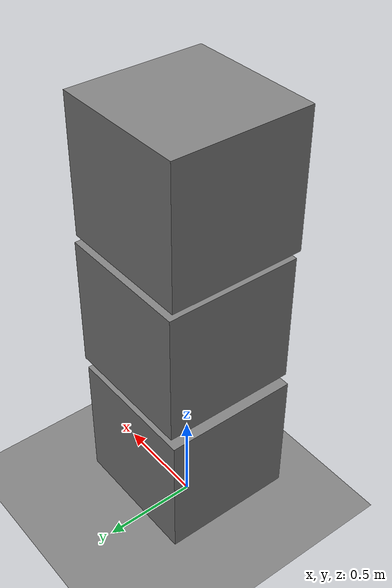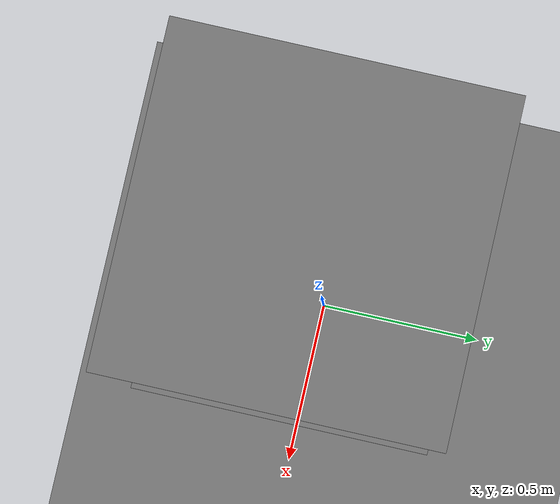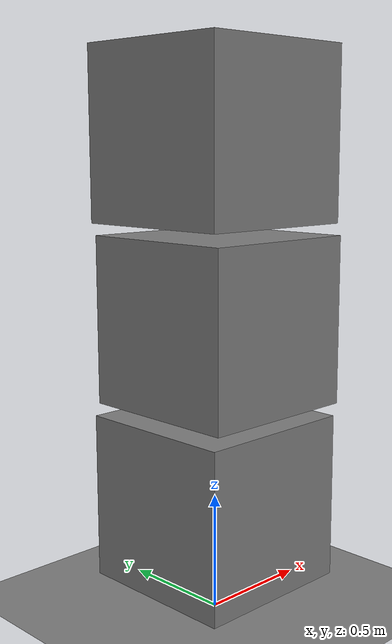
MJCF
<mujoco model="box_stack">
  <compiler angle="radian"/>
  <option timestep="0.002" gravity="0 0 -9.81"
          integrator="RK4" solver="PGS" cone="pyramidal" iterations="20"/>

  <worldbody>
    <geom name="ground" type="plane" size="5 5 0.1" friction="0.6"/>

    <body name="bottom" pos="0 0 0.5">
      <freejoint name="bottom_root"/>
      <inertial pos="0 0 0" mass="1.2" diaginertia="0.098 0.098 0.098"/>
      <geom name="bottom_box" type="box" size="0.35 0.35 0.35" friction="0.6"/>
    </body>

    <body name="middle" pos="0.02 0 1.25">
      <freejoint name="middle_root"/>
      <inertial pos="0 0 0" mass="0.9" diaginertia="0.0735 0.0735 0.0735"/>
      <geom name="middle_box" type="box" size="0.35 0.35 0.35" friction="0.6"/>
    </body>

    <body name="top" pos="0 0 2.0">
      <freejoint name="top_root"/>
      <inertial pos="0 0 0" mass="1.5" diaginertia="0.1225 0.1225 0.1225"/>
      <geom name="top_box" type="box" size="0.35 0.35 0.35" friction="0.6"/>
    </body>
  </worldbody>
</mujoco>
